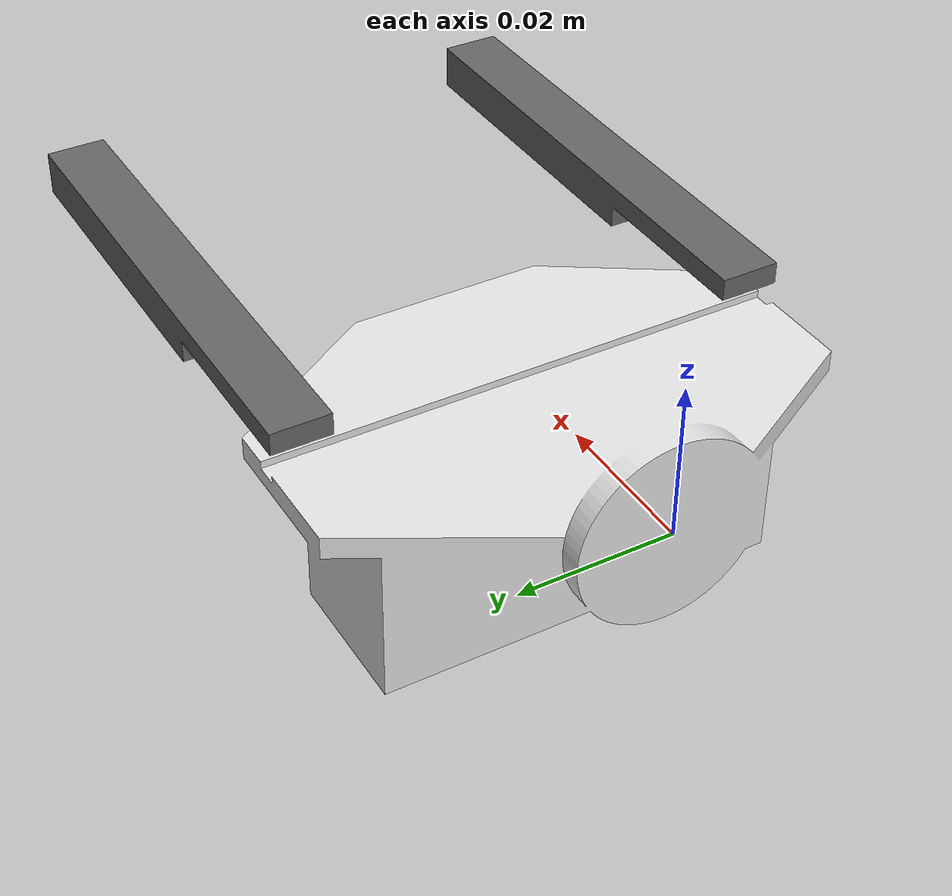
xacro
<?xml version="1.0"?>
<robot xmlns:xacro="http://www.ros.org/wiki/xacro">
    <link name="gripper_base">
        <visual>
            <origin xyz="0 0 0" rpy="0 -0 0" />
            <geometry>
                <mesh filename="file://$(find xarm_description)/meshes/stls/gripper_base.stl" />
            </geometry>
            <material name="gripper_base_material">
                <color
                    rgba="0.90196078431372550543 0.90196078431372550543 0.90196078431372550543 1.0" />
            </material>
        </visual>
        <collision>
            <origin xyz="0 0 0" rpy="0 -0 0" />
            <geometry>
                <mesh filename="file://$(find xarm_description)/meshes/stls/gripper_base.stl" />
            </geometry>
        </collision>
        <inertial>
            <origin xyz="0.026027605368087160242 1.3461538473115585546e-19 -0.010448180152627458903"
                rpy="0 0 0" />
            <mass value="0.050000000000000016653" />
            <inertia ixx="1.6770018641630726693e-05" ixy="0" ixz="5.0898449727136606593e-07"
                iyy="7.9670792501893985074e-06" iyz="0" izz="1.6977316405971644377e-05" />
        </inertial>
    </link>

    <link name="finger_r">
        <visual>
            <origin xyz="-0.028999999999999987593 0.0045000000000000005274 0.03500000000000001027"
                rpy="1.570796326794896558 4.3368086899420211873e-16 0" />
            <geometry>
                <mesh filename="file://$(find xarm_description)/meshes/stls/finger_r.stl" />
            </geometry>
            <material name="finger_r_material">
                <color rgba="0.4000000000000000222 0.4000000000000000222 0.4000000000000000222 1.0" />
            </material>
        </visual>
        <collision>
            <origin xyz="-0.028999999999999987593 0.0045000000000000005274 0.03500000000000001027"
                rpy="1.570796326794896558 4.3368086899420211873e-16 0" />
            <geometry>
                <mesh filename="file://$(find xarm_description)/meshes/stls/finger_r.stl" />
            </geometry>
        </collision>
        <inertial>
            <origin
                xyz="0.039891304347826103682 -0.00032608695652173915608 0.0039999999999999844708"
                rpy="0 0 0" />
            <mass value="0.0074519999999999985557" />
            <inertia ixx="6.1307608695652002668e-08" ixy="-6.6560869565217393766e-08"
                ixz="1.1197067390126327858e-21" iyy="2.6613559565217387824e-06"
                iyz="2.886617575405322195e-23" izz="2.6431755652173915757e-06" />
        </inertial>
    </link>

    <joint name="finger_r_joint" type="prismatic">
        <origin xyz="0.029000000000000001471 -0.034999999999999996392 0.0045000000000000005274"
            rpy="-1.570796326794896558 -0 0" />
        <parent link="gripper_base" />
        <child link="finger_r" />
        <axis xyz="0 0 1" />
        <limit effort="1" velocity="20" lower="0" upper="0.026" />
        <joint_properties friction="0.0" />
    </joint>

    <link name="finger_l">
        <visual>
            <origin xyz="-0.028999999999999987593 -0.0045000000000000005274 0.03500000000000001027"
                rpy="-1.570796326794896558 4.3368086899420211873e-16 0" />
            <geometry>
                <mesh filename="file://$(find xarm_description)/meshes/stls/finger_l.stl" />
            </geometry>
            <material name="finger_l_material">
                <color rgba="0.4000000000000000222 0.4000000000000000222 0.4000000000000000222 1.0" />
            </material>
        </visual>
        <collision>
            <origin xyz="-0.028999999999999987593 -0.0045000000000000005274 0.03500000000000001027"
                rpy="-1.570796326794896558 4.3368086899420211873e-16 0" />
            <geometry>
                <mesh filename="file://$(find xarm_description)/meshes/stls/finger_l.stl" />
            </geometry>
        </collision>
        <inertial>
            <origin xyz="0.039891304347826103682 0.00032608695652173915608 0.0039999999999999844708"
                rpy="0 0 0" />
            <mass value="0.0074519999999999985557" />
            <inertia ixx="6.1307608695652002668e-08" ixy="6.6560869565217393766e-08"
                ixz="1.1197067390126327858e-21" iyy="2.6613559565217387824e-06"
                iyz="-2.886617575405322195e-23" izz="2.6431755652173915757e-06" />
        </inertial>
    </link>

    <joint name="finger_l_joint" type="prismatic">
        <origin xyz="0.029000000000000001471 0.03500000000000001027 0.0045000000000000005274"
            rpy="1.570796326794896558 -0 0" />
        <parent link="gripper_base" />
        <child link="finger_l" />
        <axis xyz="0 0 1" />
        <limit effort="1" velocity="20" lower="0" upper="0.026" />
        <joint_properties friction="0.0" />
    </joint>
</robot>
